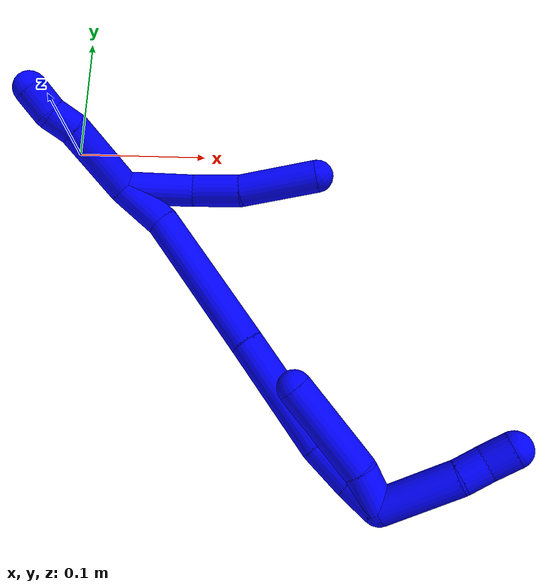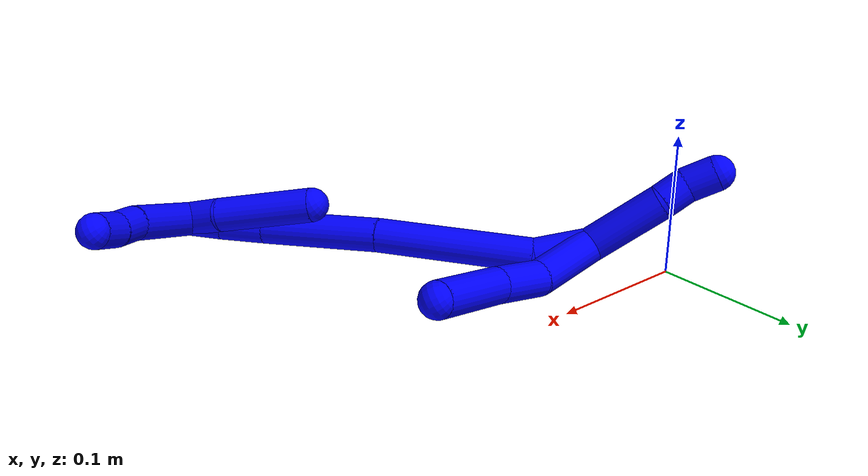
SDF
<sdf version="1.7">
 <world name="default">
  <model name="1">
   <static>0</static>
   <link name="1">
    <collision name="collision-cylinder-e_1_2_8">
     <pose>-0.009799 -0.017331 0.017527 0.779774 -0.378394 -0.157049</pose>
     <geometry><cylinder><radius>0.0125</radius><length>0.053049</length></cylinder></geometry>
     <surface>
      <friction><ode><mu>1.16</mu><mu2>1.16</mu2><slip1>0</slip1><slip2>0</slip2></ode></friction>
      <contact><ode><kp>1e+06</kp><kd>1</kd><max_vel>0</max_vel><min_depth>0.001</min_depth></ode></contact>
     </surface>
    </collision>
    <visual name="visual-cylinder-e_1_2_8">
     <pose>-0.009799 -0.017331 0.017527 0.779774 -0.378394 -0.157049</pose>
     <geometry><cylinder><radius>0.0125</radius><length>0.053049</length></cylinder></geometry>
     <material><ambient>0 0 1 1</ambient></material>
    </visual>
    <collision name="collision-cylinder-e_2_8_9">
     <pose>-0.021835 -0.050334 0.045279 0.992721 -0.118983 -0.064493</pose>
     <geometry><cylinder><radius>0.0125</radius><length>0.037694</length></cylinder></geometry>
     <surface>
      <friction><ode><mu>1.16</mu><mu2>1.16</mu2><slip1>0</slip1><slip2>0</slip2></ode></friction>
      <contact><ode><kp>1e+06</kp><kd>1</kd><max_vel>0</max_vel><min_depth>0.001</min_depth></ode></contact>
     </surface>
    </collision>
    <visual name="visual-cylinder-e_2_8_9">
     <pose>-0.021835 -0.050334 0.045279 0.992721 -0.118983 -0.064493</pose>
     <geometry><cylinder><radius>0.0125</radius><length>0.037694</length></cylinder></geometry>
     <material><ambient>0 0 1 1</ambient></material>
    </visual>
    <collision name="collision-cylinder-e_3_9_6">
     <pose>-0.031002 -0.092233 0.067422 1.14425 -0.23609 -0.152448</pose>
     <geometry><cylinder><radius>0.0125</radius><length>0.059257</length></cylinder></geometry>
     <surface>
      <friction><ode><mu>1.16</mu><mu2>1.16</mu2><slip1>0</slip1><slip2>0</slip2></ode></friction>
      <contact><ode><kp>1e+06</kp><kd>1</kd><max_vel>0</max_vel><min_depth>0.001</min_depth></ode></contact>
     </surface>
    </collision>
    <visual name="visual-cylinder-e_3_9_6">
     <pose>-0.031002 -0.092233 0.067422 1.14425 -0.23609 -0.152448</pose>
     <geometry><cylinder><radius>0.0125</radius><length>0.059257</length></cylinder></geometry>
     <material><ambient>0 0 1 1</ambient></material>
    </visual>
    <collision name="collision-cylinder-e_1_2_10">
     <pose>0.001719 -0.001384 -0.028818 3.09362 0.059504 1.78461</pose>
     <geometry><cylinder><radius>0.0125</radius><length>0.057805</length></cylinder></geometry>
     <surface>
      <friction><ode><mu>1.16</mu><mu2>1.16</mu2><slip1>0</slip1><slip2>0</slip2></ode></friction>
      <contact><ode><kp>1e+06</kp><kd>1</kd><max_vel>0</max_vel><min_depth>0.001</min_depth></ode></contact>
     </surface>
    </collision>
    <visual name="visual-cylinder-e_1_2_10">
     <pose>0.001719 -0.001384 -0.028818 3.09362 0.059504 1.78461</pose>
     <geometry><cylinder><radius>0.0125</radius><length>0.057805</length></cylinder></geometry>
     <material><ambient>0 0 1 1</ambient></material>
    </visual>
    <collision name="collision-cylinder-e_2_10_11">
     <pose>0.005561 -0.001051 -0.067376 -2.96712 0.211467 -1.76312</pose>
     <geometry><cylinder><radius>0.0125</radius><length>0.02023</length></cylinder></geometry>
     <surface>
      <friction><ode><mu>1.16</mu><mu2>1.16</mu2><slip1>0</slip1><slip2>0</slip2></ode></friction>
      <contact><ode><kp>1e+06</kp><kd>1</kd><max_vel>0</max_vel><min_depth>0.001</min_depth></ode></contact>
     </surface>
    </collision>
    <visual name="visual-cylinder-e_2_10_11">
     <pose>0.005561 -0.001051 -0.067376 -2.96712 0.211467 -1.76312</pose>
     <geometry><cylinder><radius>0.0125</radius><length>0.02023</length></cylinder></geometry>
     <material><ambient>0 0 1 1</ambient></material>
    </visual>
    <collision name="collision-cylinder-e_3_11_5">
     <pose>0.006634 0.001021 -0.088042 -3.10912 -0.095761 2.48815</pose>
     <geometry><cylinder><radius>0.0125</radius><length>0.021965</length></cylinder></geometry>
     <surface>
      <friction><ode><mu>1.16</mu><mu2>1.16</mu2><slip1>0</slip1><slip2>0</slip2></ode></friction>
      <contact><ode><kp>1e+06</kp><kd>1</kd><max_vel>0</max_vel><min_depth>0.001</min_depth></ode></contact>
     </surface>
    </collision>
    <visual name="visual-cylinder-e_3_11_5">
     <pose>0.006634 0.001021 -0.088042 -3.10912 -0.095761 2.48815</pose>
     <geometry><cylinder><radius>0.0125</radius><length>0.021965</length></cylinder></geometry>
     <material><ambient>0 0 1 1</ambient></material>
    </visual>
    <collision name="collision-cylinder-e_1_2_12">
     <pose>0.003386 -0.00616 0.018412 0.322856 0.172666 0.028186</pose>
     <geometry><cylinder><radius>0.0125</radius><length>0.039417</length></cylinder></geometry>
     <surface>
      <friction><ode><mu>1.16</mu><mu2>1.16</mu2><slip1>0</slip1><slip2>0</slip2></ode></friction>
      <contact><ode><kp>1e+06</kp><kd>1</kd><max_vel>0</max_vel><min_depth>0.001</min_depth></ode></contact>
     </surface>
    </collision>
    <visual name="visual-cylinder-e_1_2_12">
     <pose>0.003386 -0.00616 0.018412 0.322856 0.172666 0.028186</pose>
     <geometry><cylinder><radius>0.0125</radius><length>0.039417</length></cylinder></geometry>
     <material><ambient>0 0 1 1</ambient></material>
    </visual>
    <collision name="collision-cylinder-e_2_12_13">
     <pose>0.035148 -0.028125 0.084008 0.323229 0.518262 0.086385</pose>
     <geometry><cylinder><radius>0.0125</radius><length>0.114565</length></cylinder></geometry>
     <surface>
      <friction><ode><mu>1.16</mu><mu2>1.16</mu2><slip1>0</slip1><slip2>0</slip2></ode></friction>
      <contact><ode><kp>1e+06</kp><kd>1</kd><max_vel>0</max_vel><min_depth>0.001</min_depth></ode></contact>
     </surface>
    </collision>
    <visual name="visual-cylinder-e_2_12_13">
     <pose>0.035148 -0.028125 0.084008 0.323229 0.518262 0.086385</pose>
     <geometry><cylinder><radius>0.0125</radius><length>0.114565</length></cylinder></geometry>
     <material><ambient>0 0 1 1</ambient></material>
    </visual>
    <collision name="collision-cylinder-e_3_13_14">
     <pose>0.083913 -0.054392 0.168925 0.270459 0.480065 0.066577</pose>
     <geometry><cylinder><radius>0.0125</radius><length>0.088294</length></cylinder></geometry>
     <surface>
      <friction><ode><mu>1.16</mu><mu2>1.16</mu2><slip1>0</slip1><slip2>0</slip2></ode></friction>
      <contact><ode><kp>1e+06</kp><kd>1</kd><max_vel>0</max_vel><min_depth>0.001</min_depth></ode></contact>
     </surface>
    </collision>
    <visual name="visual-cylinder-e_3_13_14">
     <pose>0.083913 -0.054392 0.168925 0.270459 0.480065 0.066577</pose>
     <geometry><cylinder><radius>0.0125</radius><length>0.088294</length></cylinder></geometry>
     <material><ambient>0 0 1 1</ambient></material>
    </visual>
    <collision name="collision-cylinder-e_4_14_15">
     <pose>0.111067 -0.071254 0.220166 0.442455 0.424991 0.096973</pose>
     <geometry><cylinder><radius>0.0125</radius><length>0.032815</length></cylinder></geometry>
     <surface>
      <friction><ode><mu>1.16</mu><mu2>1.16</mu2><slip1>0</slip1><slip2>0</slip2></ode></friction>
      <contact><ode><kp>1e+06</kp><kd>1</kd><max_vel>0</max_vel><min_depth>0.001</min_depth></ode></contact>
     </surface>
    </collision>
    <visual name="visual-cylinder-e_4_14_15">
     <pose>0.111067 -0.071254 0.220166 0.442455 0.424991 0.096973</pose>
     <geometry><cylinder><radius>0.0125</radius><length>0.032815</length></cylinder></geometry>
     <material><ambient>0 0 1 1</ambient></material>
    </visual>
    <collision name="collision-cylinder-e_5_15_1">
     <pose>0.122869 -0.083479 0.243463 0.536796 0.41636 0.116066</pose>
     <geometry><cylinder><radius>0.0125</radius><length>0.02491</length></cylinder></geometry>
     <surface>
      <friction><ode><mu>1.16</mu><mu2>1.16</mu2><slip1>0</slip1><slip2>0</slip2></ode></friction>
      <contact><ode><kp>1e+06</kp><kd>1</kd><max_vel>0</max_vel><min_depth>0.001</min_depth></ode></contact>
     </surface>
    </collision>
    <visual name="visual-cylinder-e_5_15_1">
     <pose>0.122869 -0.083479 0.243463 0.536796 0.41636 0.116066</pose>
     <geometry><cylinder><radius>0.0125</radius><length>0.02491</length></cylinder></geometry>
     <material><ambient>0 0 1 1</ambient></material>
    </visual>
    <collision name="collision-cylinder-e_1_1_16">
     <pose>0.122371 -0.089423 0.240024 3.13258 -0.396316 -3.09673</pose>
     <geometry><cylinder><radius>0.0125</radius><length>0.028679</length></cylinder></geometry>
     <surface>
      <friction><ode><mu>1.16</mu><mu2>1.16</mu2><slip1>0</slip1><slip2>0</slip2></ode></friction>
      <contact><ode><kp>1e+06</kp><kd>1</kd><max_vel>0</max_vel><min_depth>0.001</min_depth></ode></contact>
     </surface>
    </collision>
    <visual name="visual-cylinder-e_1_1_16">
     <pose>0.122371 -0.089423 0.240024 3.13258 -0.396316 -3.09673</pose>
     <geometry><cylinder><radius>0.0125</radius><length>0.028679</length></cylinder></geometry>
     <material><ambient>0 0 1 1</ambient></material>
    </visual>
    <collision name="collision-cylinder-e_2_16_4">
     <pose>0.1056 -0.082394 0.193716 -2.92877 -0.320519 1.97373</pose>
     <geometry><cylinder><radius>0.0125</radius><length>0.071321</length></cylinder></geometry>
     <surface>
      <friction><ode><mu>1.16</mu><mu2>1.16</mu2><slip1>0</slip1><slip2>0</slip2></ode></friction>
      <contact><ode><kp>1e+06</kp><kd>1</kd><max_vel>0</max_vel><min_depth>0.001</min_depth></ode></contact>
     </surface>
    </collision>
    <visual name="visual-cylinder-e_2_16_4">
     <pose>0.1056 -0.082394 0.193716 -2.92877 -0.320519 1.97373</pose>
     <geometry><cylinder><radius>0.0125</radius><length>0.071321</length></cylinder></geometry>
     <material><ambient>0 0 1 1</ambient></material>
    </visual>
    <collision name="collision-cylinder-e_1_1_17">
     <pose>0.118588 -0.116659 0.25833 1.38723 -0.32318 -0.269425</pose>
     <geometry><cylinder><radius>0.0125</radius><length>0.058682</length></cylinder></geometry>
     <surface>
      <friction><ode><mu>1.16</mu><mu2>1.16</mu2><slip1>0</slip1><slip2>0</slip2></ode></friction>
      <contact><ode><kp>1e+06</kp><kd>1</kd><max_vel>0</max_vel><min_depth>0.001</min_depth></ode></contact>
     </surface>
    </collision>
    <visual name="visual-cylinder-e_1_1_17">
     <pose>0.118588 -0.116659 0.25833 1.38723 -0.32318 -0.269425</pose>
     <geometry><cylinder><radius>0.0125</radius><length>0.058682</length></cylinder></geometry>
     <material><ambient>0 0 1 1</ambient></material>
    </visual>
    <collision name="collision-cylinder-e_2_17_18">
     <pose>0.104392 -0.152608 0.265119 1.37439 -0.507845 -0.419677</pose>
     <geometry><cylinder><radius>0.0125</radius><length>0.020058</length></cylinder></geometry>
     <surface>
      <friction><ode><mu>1.16</mu><mu2>1.16</mu2><slip1>0</slip1><slip2>0</slip2></ode></friction>
      <contact><ode><kp>1e+06</kp><kd>1</kd><max_vel>0</max_vel><min_depth>0.001</min_depth></ode></contact>
     </surface>
    </collision>
    <visual name="visual-cylinder-e_2_17_18">
     <pose>0.104392 -0.152608 0.265119 1.37439 -0.507845 -0.419677</pose>
     <geometry><cylinder><radius>0.0125</radius><length>0.020058</length></cylinder></geometry>
     <material><ambient>0 0 1 1</ambient></material>
    </visual>
    <collision name="collision-cylinder-e_3_18_3">
     <pose>0.095792 -0.171118 0.267744 1.47878 -0.35782 -0.326905</pose>
     <geometry><cylinder><radius>0.0125</radius><length>0.02126</length></cylinder></geometry>
     <surface>
      <friction><ode><mu>1.16</mu><mu2>1.16</mu2><slip1>0</slip1><slip2>0</slip2></ode></friction>
      <contact><ode><kp>1e+06</kp><kd>1</kd><max_vel>0</max_vel><min_depth>0.001</min_depth></ode></contact>
     </surface>
    </collision>
    <visual name="visual-cylinder-e_3_18_3">
     <pose>0.095792 -0.171118 0.267744 1.47878 -0.35782 -0.326905</pose>
     <geometry><cylinder><radius>0.0125</radius><length>0.02126</length></cylinder></geometry>
     <material><ambient>0 0 1 1</ambient></material>
    </visual>
    <collision name="collision-sphere-3">
     <pose>0.092069 -0.181032 0.268659 0 -0 0</pose>
     <geometry><sphere><radius>0.0125</radius></sphere></geometry>
     <surface>
      <friction><ode><mu>1.16</mu><mu2>1.16</mu2><slip1>0</slip1><slip2>0</slip2></ode></friction>
      <contact><ode><kp>1e+06</kp><kd>1</kd><max_vel>0</max_vel><min_depth>0.001</min_depth></ode></contact>
     </surface>
    </collision>
    <visual name="visual-sphere-3">
     <pose>0.092069 -0.181032 0.268659 0 -0 0</pose>
     <geometry><sphere><radius>0.0125</radius></sphere></geometry>
     <material><ambient>0 0 1 1</ambient></material>
    </visual>
    <collision name="collision-sphere-11">
     <pose>0.007684 0.000666 -0.077115 0 -0 0</pose>
     <geometry><sphere><radius>0.0125</radius></sphere></geometry>
     <surface>
      <friction><ode><mu>1.16</mu><mu2>1.16</mu2><slip1>0</slip1><slip2>0</slip2></ode></friction>
      <contact><ode><kp>1e+06</kp><kd>1</kd><max_vel>0</max_vel><min_depth>0.001</min_depth></ode></contact>
     </surface>
    </collision>
    <visual name="visual-sphere-11">
     <pose>0.007684 0.000666 -0.077115 0 -0 0</pose>
     <geometry><sphere><radius>0.0125</radius></sphere></geometry>
     <material><ambient>0 0 1 1</ambient></material>
    </visual>
    <collision name="collision-sphere-10">
     <pose>0.003438 -0.002767 -0.057636 0 -0 0</pose>
     <geometry><sphere><radius>0.0125</radius></sphere></geometry>
     <surface>
      <friction><ode><mu>1.16</mu><mu2>1.16</mu2><slip1>0</slip1><slip2>0</slip2></ode></friction>
      <contact><ode><kp>1e+06</kp><kd>1</kd><max_vel>0</max_vel><min_depth>0.001</min_depth></ode></contact>
     </surface>
    </collision>
    <visual name="visual-sphere-10">
     <pose>0.003438 -0.002767 -0.057636 0 -0 0</pose>
     <geometry><sphere><radius>0.0125</radius></sphere></geometry>
     <material><ambient>0 0 1 1</ambient></material>
    </visual>
    <collision name="collision-sphere-6">
     <pose>-0.037933 -0.118458 0.079341 0 -0 0</pose>
     <geometry><sphere><radius>0.0125</radius></sphere></geometry>
     <surface>
      <friction><ode><mu>1.16</mu><mu2>1.16</mu2><slip1>0</slip1><slip2>0</slip2></ode></friction>
      <contact><ode><kp>1e+06</kp><kd>1</kd><max_vel>0</max_vel><min_depth>0.001</min_depth></ode></contact>
     </surface>
    </collision>
    <visual name="visual-sphere-6">
     <pose>-0.037933 -0.118458 0.079341 0 -0 0</pose>
     <geometry><sphere><radius>0.0125</radius></sphere></geometry>
     <material><ambient>0 0 1 1</ambient></material>
    </visual>
    <collision name="collision-sphere-9">
     <pose>-0.024072 -0.066007 0.055504 0 -0 0</pose>
     <geometry><sphere><radius>0.0125</radius></sphere></geometry>
     <surface>
      <friction><ode><mu>1.16</mu><mu2>1.16</mu2><slip1>0</slip1><slip2>0</slip2></ode></friction>
      <contact><ode><kp>1e+06</kp><kd>1</kd><max_vel>0</max_vel><min_depth>0.001</min_depth></ode></contact>
     </surface>
    </collision>
    <visual name="visual-sphere-9">
     <pose>-0.024072 -0.066007 0.055504 0 -0 0</pose>
     <geometry><sphere><radius>0.0125</radius></sphere></geometry>
     <material><ambient>0 0 1 1</ambient></material>
    </visual>
    <collision name="collision-sphere-2">
     <geometry><sphere><radius>0.0125</radius></sphere></geometry>
     <surface>
      <friction><ode><mu>1.16</mu><mu2>1.16</mu2><slip1>0</slip1><slip2>0</slip2></ode></friction>
      <contact><ode><kp>1e+06</kp><kd>1</kd><max_vel>0</max_vel><min_depth>0.001</min_depth></ode></contact>
     </surface>
    </collision>
    <visual name="visual-sphere-2">
     <geometry><sphere><radius>0.0125</radius></sphere></geometry>
     <material><ambient>0 0 1 1</ambient></material>
    </visual>
    <collision name="collision-sphere-8">
     <pose>-0.019598 -0.034661 0.035053 0 -0 0</pose>
     <geometry><sphere><radius>0.0125</radius></sphere></geometry>
     <surface>
      <friction><ode><mu>1.16</mu><mu2>1.16</mu2><slip1>0</slip1><slip2>0</slip2></ode></friction>
      <contact><ode><kp>1e+06</kp><kd>1</kd><max_vel>0</max_vel><min_depth>0.001</min_depth></ode></contact>
     </surface>
    </collision>
    <visual name="visual-sphere-8">
     <pose>-0.019598 -0.034661 0.035053 0 -0 0</pose>
     <geometry><sphere><radius>0.0125</radius></sphere></geometry>
     <material><ambient>0 0 1 1</ambient></material>
    </visual>
    <collision name="collision-sphere-5">
     <pose>0.005584 0.001376 -0.098968 0 -0 0</pose>
     <geometry><sphere><radius>0.0125</radius></sphere></geometry>
     <surface>
      <friction><ode><mu>1.16</mu><mu2>1.16</mu2><slip1>0</slip1><slip2>0</slip2></ode></friction>
      <contact><ode><kp>1e+06</kp><kd>1</kd><max_vel>0</max_vel><min_depth>0.001</min_depth></ode></contact>
     </surface>
    </collision>
    <visual name="visual-sphere-5">
     <pose>0.005584 0.001376 -0.098968 0 -0 0</pose>
     <geometry><sphere><radius>0.0125</radius></sphere></geometry>
     <material><ambient>0 0 1 1</ambient></material>
    </visual>
    <collision name="collision-sphere-12">
     <pose>0.006772 -0.01232 0.036824 0 -0 0</pose>
     <geometry><sphere><radius>0.0125</radius></sphere></geometry>
     <surface>
      <friction><ode><mu>1.16</mu><mu2>1.16</mu2><slip1>0</slip1><slip2>0</slip2></ode></friction>
      <contact><ode><kp>1e+06</kp><kd>1</kd><max_vel>0</max_vel><min_depth>0.001</min_depth></ode></contact>
     </surface>
    </collision>
    <visual name="visual-sphere-12">
     <pose>0.006772 -0.01232 0.036824 0 -0 0</pose>
     <geometry><sphere><radius>0.0125</radius></sphere></geometry>
     <material><ambient>0 0 1 1</ambient></material>
    </visual>
    <collision name="collision-sphere-13">
     <pose>0.063525 -0.043931 0.131191 0 -0 0</pose>
     <geometry><sphere><radius>0.0125</radius></sphere></geometry>
     <surface>
      <friction><ode><mu>1.16</mu><mu2>1.16</mu2><slip1>0</slip1><slip2>0</slip2></ode></friction>
      <contact><ode><kp>1e+06</kp><kd>1</kd><max_vel>0</max_vel><min_depth>0.001</min_depth></ode></contact>
     </surface>
    </collision>
    <visual name="visual-sphere-13">
     <pose>0.063525 -0.043931 0.131191 0 -0 0</pose>
     <geometry><sphere><radius>0.0125</radius></sphere></geometry>
     <material><ambient>0 0 1 1</ambient></material>
    </visual>
    <collision name="collision-sphere-14">
     <pose>0.104302 -0.064854 0.206658 0 -0 0</pose>
     <geometry><sphere><radius>0.0125</radius></sphere></geometry>
     <surface>
      <friction><ode><mu>1.16</mu><mu2>1.16</mu2><slip1>0</slip1><slip2>0</slip2></ode></friction>
      <contact><ode><kp>1e+06</kp><kd>1</kd><max_vel>0</max_vel><min_depth>0.001</min_depth></ode></contact>
     </surface>
    </collision>
    <visual name="visual-sphere-14">
     <pose>0.104302 -0.064854 0.206658 0 -0 0</pose>
     <geometry><sphere><radius>0.0125</radius></sphere></geometry>
     <material><ambient>0 0 1 1</ambient></material>
    </visual>
    <collision name="collision-sphere-15">
     <pose>0.117832 -0.077654 0.233675 0 -0 0</pose>
     <geometry><sphere><radius>0.0125</radius></sphere></geometry>
     <surface>
      <friction><ode><mu>1.16</mu><mu2>1.16</mu2><slip1>0</slip1><slip2>0</slip2></ode></friction>
      <contact><ode><kp>1e+06</kp><kd>1</kd><max_vel>0</max_vel><min_depth>0.001</min_depth></ode></contact>
     </surface>
    </collision>
    <visual name="visual-sphere-15">
     <pose>0.117832 -0.077654 0.233675 0 -0 0</pose>
     <geometry><sphere><radius>0.0125</radius></sphere></geometry>
     <material><ambient>0 0 1 1</ambient></material>
    </visual>
    <collision name="collision-sphere-1">
     <pose>0.127906 -0.089304 0.253252 0 -0 0</pose>
     <geometry><sphere><radius>0.0125</radius></sphere></geometry>
     <surface>
      <friction><ode><mu>1.16</mu><mu2>1.16</mu2><slip1>0</slip1><slip2>0</slip2></ode></friction>
      <contact><ode><kp>1e+06</kp><kd>1</kd><max_vel>0</max_vel><min_depth>0.001</min_depth></ode></contact>
     </surface>
    </collision>
    <visual name="visual-sphere-1">
     <pose>0.127906 -0.089304 0.253252 0 -0 0</pose>
     <geometry><sphere><radius>0.0125</radius></sphere></geometry>
     <material><ambient>0 0 1 1</ambient></material>
    </visual>
    <collision name="collision-sphere-18">
     <pose>0.099515 -0.161203 0.266829 0 -0 0</pose>
     <geometry><sphere><radius>0.0125</radius></sphere></geometry>
     <surface>
      <friction><ode><mu>1.16</mu><mu2>1.16</mu2><slip1>0</slip1><slip2>0</slip2></ode></friction>
      <contact><ode><kp>1e+06</kp><kd>1</kd><max_vel>0</max_vel><min_depth>0.001</min_depth></ode></contact>
     </surface>
    </collision>
    <visual name="visual-sphere-18">
     <pose>0.099515 -0.161203 0.266829 0 -0 0</pose>
     <geometry><sphere><radius>0.0125</radius></sphere></geometry>
     <material><ambient>0 0 1 1</ambient></material>
    </visual>
    <collision name="collision-sphere-16">
     <pose>0.116835 -0.089543 0.226797 0 -0 0</pose>
     <geometry><sphere><radius>0.0125</radius></sphere></geometry>
     <surface>
      <friction><ode><mu>1.16</mu><mu2>1.16</mu2><slip1>0</slip1><slip2>0</slip2></ode></friction>
      <contact><ode><kp>1e+06</kp><kd>1</kd><max_vel>0</max_vel><min_depth>0.001</min_depth></ode></contact>
     </surface>
    </collision>
    <visual name="visual-sphere-16">
     <pose>0.116835 -0.089543 0.226797 0 -0 0</pose>
     <geometry><sphere><radius>0.0125</radius></sphere></geometry>
     <material><ambient>0 0 1 1</ambient></material>
    </visual>
    <collision name="collision-sphere-4">
     <pose>0.094365 -0.075245 0.160635 0 -0 0</pose>
     <geometry><sphere><radius>0.0125</radius></sphere></geometry>
     <surface>
      <friction><ode><mu>1.16</mu><mu2>1.16</mu2><slip1>0</slip1><slip2>0</slip2></ode></friction>
      <contact><ode><kp>1e+06</kp><kd>1</kd><max_vel>0</max_vel><min_depth>0.001</min_depth></ode></contact>
     </surface>
    </collision>
    <visual name="visual-sphere-4">
     <pose>0.094365 -0.075245 0.160635 0 -0 0</pose>
     <geometry><sphere><radius>0.0125</radius></sphere></geometry>
     <material><ambient>0 0 1 1</ambient></material>
    </visual>
    <collision name="collision-sphere-17">
     <pose>0.10927 -0.144013 0.263409 0 -0 0</pose>
     <geometry><sphere><radius>0.0125</radius></sphere></geometry>
     <surface>
      <friction><ode><mu>1.16</mu><mu2>1.16</mu2><slip1>0</slip1><slip2>0</slip2></ode></friction>
      <contact><ode><kp>1e+06</kp><kd>1</kd><max_vel>0</max_vel><min_depth>0.001</min_depth></ode></contact>
     </surface>
    </collision>
    <visual name="visual-sphere-17">
     <pose>0.10927 -0.144013 0.263409 0 -0 0</pose>
     <geometry><sphere><radius>0.0125</radius></sphere></geometry>
     <material><ambient>0 0 1 1</ambient></material>
    </visual>
    <inertial>
     <pose>0.05011 -0.057376 0.116123 0 -0 0</pose>
     <mass>0.75</mass>
     <inertia>
      <ixx>0.000267</ixx>
      <ixy>0</ixy>
      <ixz>0</ixz>
      <iyy>0.000274</iyy>
      <iyz>0</iyz>
      <izz>4.6e-05</izz>
     </inertia>
    </inertial>
   </link>
   <pose>0.041608 -0.035572 0.01996 -2.27575 -0.624893 -1.87249</pose>
  </model>
 </world>
</sdf>
